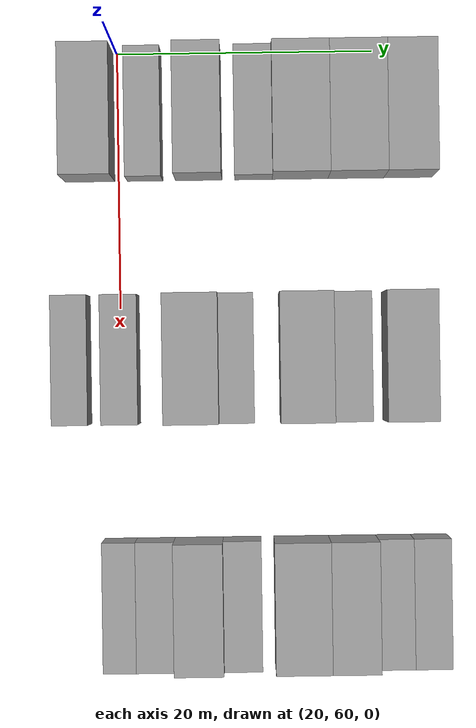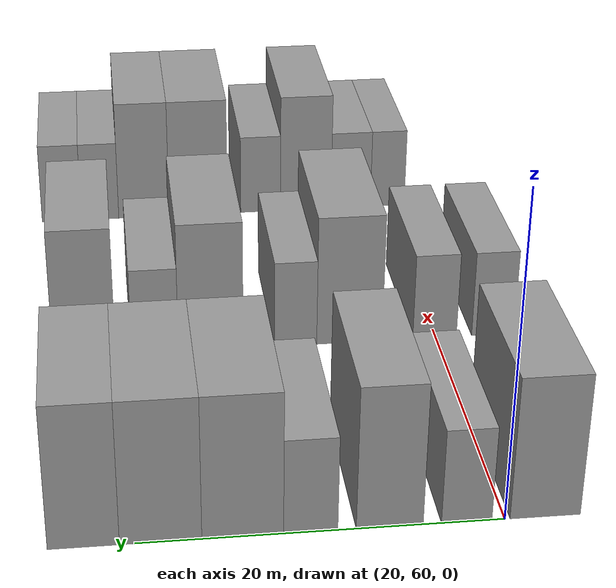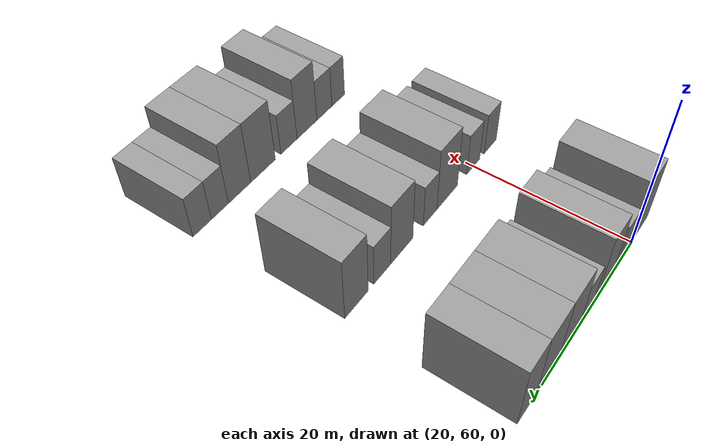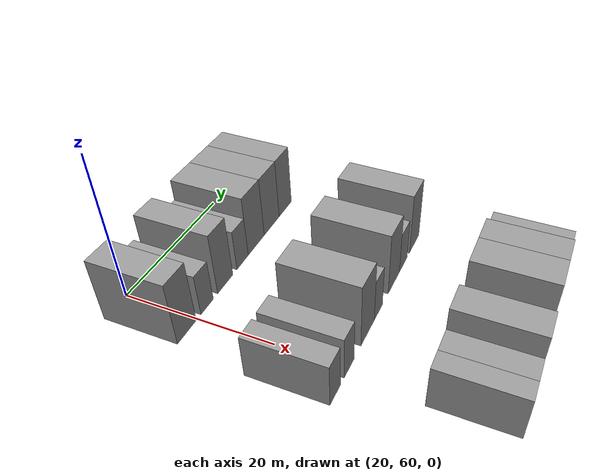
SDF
<sdf version="1.6">
 <world name="default">
  <model name="building_74">
   <static>1</static>
   <pose>25.0000 57.7731 0 0.000000 0.000000 0.000000</pose>
   <link name="link">
    <pose>0 0 4.50 0 0 0</pose>
    <collision name="collision"><geometry><box><size>10.0000 3.8920 9.0000</size></box></geometry></collision>
    <visual name="visual">
     <cast_shadows>0</cast_shadows>
     <geometry><box><size>10.0000 3.8920 9.0000</size></box></geometry>
     <material>
      <script>
       <uri>model://grey_wall/materials/scripts</uri>
       <uri>model://grey_wall/materials/textures</uri>
       <name>vrc/grey_wall</name>
      </script>
     </material>
    </visual>
   </link>
  </model>
  <model name="building_75">
   <static>1</static>
   <pose>25.0000 62.1037 0 0.000000 0.000000 0.000000</pose>
   <link name="link">
    <pose>0 0 3.00 0 0 0</pose>
    <collision name="collision"><geometry><box><size>10.0000 2.7691 6.0000</size></box></geometry></collision>
    <visual name="visual">
     <cast_shadows>0</cast_shadows>
     <geometry><box><size>10.0000 2.7691 6.0000</size></box></geometry>
     <material>
      <script>
       <uri>model://grey_wall/materials/scripts</uri>
       <uri>model://grey_wall/materials/textures</uri>
       <name>vrc/grey_wall</name>
      </script>
     </material>
    </visual>
   </link>
  </model>
  <model name="building_76">
   <static>1</static>
   <pose>25.0000 66.3098 0 0.000000 0.000000 0.000000</pose>
   <link name="link">
    <pose>0 0 4.50 0 0 0</pose>
    <collision name="collision"><geometry><box><size>10.0000 3.6431 9.0000</size></box></geometry></collision>
    <visual name="visual">
     <cast_shadows>0</cast_shadows>
     <geometry><box><size>10.0000 3.6431 9.0000</size></box></geometry>
     <material>
      <script>
       <uri>model://grey_wall/materials/scripts</uri>
       <uri>model://grey_wall/materials/textures</uri>
       <name>vrc/grey_wall</name>
      </script>
     </material>
    </visual>
   </link>
  </model>
  <model name="building_77">
   <static>1</static>
   <pose>25.0000 70.5942 0 0.000000 0.000000 0.000000</pose>
   <link name="link">
    <pose>0 0 3.00 0 0 0</pose>
    <collision name="collision"><geometry><box><size>10.0000 2.9257 6.0000</size></box></geometry></collision>
    <visual name="visual">
     <cast_shadows>0</cast_shadows>
     <geometry><box><size>10.0000 2.9257 6.0000</size></box></geometry>
     <material>
      <script>
       <uri>model://grey_wall/materials/scripts</uri>
       <uri>model://grey_wall/materials/textures</uri>
       <name>vrc/grey_wall</name>
      </script>
     </material>
    </visual>
   </link>
  </model>
  <model name="building_78">
   <static>1</static>
   <pose>25.0000 74.2457 0 0.000000 0.000000 0.000000</pose>
   <link name="link">
    <pose>0 0 4.50 0 0 0</pose>
    <collision name="collision"><geometry><box><size>10.0000 4.3774 9.0000</size></box></geometry></collision>
    <visual name="visual">
     <cast_shadows>0</cast_shadows>
     <geometry><box><size>10.0000 4.3774 9.0000</size></box></geometry>
     <material>
      <script>
       <uri>model://grey_wall/materials/scripts</uri>
       <uri>model://grey_wall/materials/textures</uri>
       <name>vrc/grey_wall</name>
      </script>
     </material>
    </visual>
   </link>
  </model>
  <model name="building_79">
   <static>1</static>
   <pose>25.0000 78.6218 0 0.000000 0.000000 0.000000</pose>
   <link name="link">
    <pose>0 0 4.50 0 0 0</pose>
    <collision name="collision"><geometry><box><size>10.0000 4.3747 9.0000</size></box></geometry></collision>
    <visual name="visual">
     <cast_shadows>0</cast_shadows>
     <geometry><box><size>10.0000 4.3747 9.0000</size></box></geometry>
     <material>
      <script>
       <uri>model://grey_wall/materials/scripts</uri>
       <uri>model://grey_wall/materials/textures</uri>
       <name>vrc/grey_wall</name>
      </script>
     </material>
    </visual>
   </link>
  </model>
  <model name="building_80">
   <static>1</static>
   <pose>25.0000 82.7082 0 0.000000 0.000000 0.000000</pose>
   <link name="link">
    <pose>0 0 4.50 0 0 0</pose>
    <collision name="collision"><geometry><box><size>10.0000 3.7982 9.0000</size></box></geometry></collision>
    <visual name="visual">
     <cast_shadows>0</cast_shadows>
     <geometry><box><size>10.0000 3.7982 9.0000</size></box></geometry>
     <material>
      <script>
       <uri>model://grey_wall/materials/scripts</uri>
       <uri>model://grey_wall/materials/textures</uri>
       <name>vrc/grey_wall</name>
      </script>
     </material>
    </visual>
   </link>
  </model>
  <model name="building_191">
   <static>1</static>
   <pose>44.0000 56.2660 0 0.000000 0.000000 0.000000</pose>
   <link name="link">
    <pose>0 0 3.00 0 0 0</pose>
    <collision name="collision"><geometry><box><size>10.0000 2.7755 6.0000</size></box></geometry></collision>
    <visual name="visual">
     <cast_shadows>0</cast_shadows>
     <geometry><box><size>10.0000 2.7755 6.0000</size></box></geometry>
     <material>
      <script>
       <uri>model://grey_wall/materials/scripts</uri>
       <uri>model://grey_wall/materials/textures</uri>
       <name>vrc/grey_wall</name>
      </script>
     </material>
    </visual>
   </link>
  </model>
  <model name="building_192">
   <static>1</static>
   <pose>44.0000 60.0739 0 0.000000 0.000000 0.000000</pose>
   <link name="link">
    <pose>0 0 3.00 0 0 0</pose>
    <collision name="collision"><geometry><box><size>10.0000 2.8402 6.0000</size></box></geometry></collision>
    <visual name="visual">
     <cast_shadows>0</cast_shadows>
     <geometry><box><size>10.0000 2.8402 6.0000</size></box></geometry>
     <material>
      <script>
       <uri>model://grey_wall/materials/scripts</uri>
       <uri>model://grey_wall/materials/textures</uri>
       <name>vrc/grey_wall</name>
      </script>
     </material>
    </visual>
   </link>
  </model>
  <model name="building_193">
   <static>1</static>
   <pose>44.0000 65.6037 0 0.000000 0.000000 0.000000</pose>
   <link name="link">
    <pose>0 0 4.50 0 0 0</pose>
    <collision name="collision"><geometry><box><size>10.0000 4.2195 9.0000</size></box></geometry></collision>
    <visual name="visual">
     <cast_shadows>0</cast_shadows>
     <geometry><box><size>10.0000 4.2195 9.0000</size></box></geometry>
     <material>
      <script>
       <uri>model://grey_wall/materials/scripts</uri>
       <uri>model://grey_wall/materials/textures</uri>
       <name>vrc/grey_wall</name>
      </script>
     </material>
    </visual>
   </link>
  </model>
  <model name="building_194">
   <static>1</static>
   <pose>44.0000 69.0674 0 0.000000 0.000000 0.000000</pose>
   <link name="link">
    <pose>0 0 3.00 0 0 0</pose>
    <collision name="collision"><geometry><box><size>10.0000 2.7080 6.0000</size></box></geometry></collision>
    <visual name="visual">
     <cast_shadows>0</cast_shadows>
     <geometry><box><size>10.0000 2.7080 6.0000</size></box></geometry>
     <material>
      <script>
       <uri>model://grey_wall/materials/scripts</uri>
       <uri>model://grey_wall/materials/textures</uri>
       <name>vrc/grey_wall</name>
      </script>
     </material>
    </visual>
   </link>
  </model>
  <model name="building_195">
   <static>1</static>
   <pose>44.0000 74.4796 0 0.000000 0.000000 0.000000</pose>
   <link name="link">
    <pose>0 0 4.50 0 0 0</pose>
    <collision name="collision"><geometry><box><size>10.0000 4.1163 9.0000</size></box></geometry></collision>
    <visual name="visual">
     <cast_shadows>0</cast_shadows>
     <geometry><box><size>10.0000 4.1163 9.0000</size></box></geometry>
     <material>
      <script>
       <uri>model://grey_wall/materials/scripts</uri>
       <uri>model://grey_wall/materials/textures</uri>
       <name>vrc/grey_wall</name>
      </script>
     </material>
    </visual>
   </link>
  </model>
  <model name="building_196">
   <static>1</static>
   <pose>44.0000 78.0209 0 0.000000 0.000000 0.000000</pose>
   <link name="link">
    <pose>0 0 3.00 0 0 0</pose>
    <collision name="collision"><geometry><box><size>10.0000 2.9663 6.0000</size></box></geometry></collision>
    <visual name="visual">
     <cast_shadows>0</cast_shadows>
     <geometry><box><size>10.0000 2.9663 6.0000</size></box></geometry>
     <material>
      <script>
       <uri>model://grey_wall/materials/scripts</uri>
       <uri>model://grey_wall/materials/textures</uri>
       <name>vrc/grey_wall</name>
      </script>
     </material>
    </visual>
   </link>
  </model>
  <model name="building_197">
   <static>1</static>
   <pose>44.0000 82.4602 0 0.000000 0.000000 0.000000</pose>
   <link name="link">
    <pose>0 0 4.50 0 0 0</pose>
    <collision name="collision"><geometry><box><size>10.0000 3.9125 9.0000</size></box></geometry></collision>
    <visual name="visual">
     <cast_shadows>0</cast_shadows>
     <geometry><box><size>10.0000 3.9125 9.0000</size></box></geometry>
     <material>
      <script>
       <uri>model://grey_wall/materials/scripts</uri>
       <uri>model://grey_wall/materials/textures</uri>
       <name>vrc/grey_wall</name>
      </script>
     </material>
    </visual>
   </link>
  </model>
  <model name="building_306">
   <static>1</static>
   <pose>63.0000 59.8619 0 0.000000 0.000000 0.000000</pose>
   <link name="link">
    <pose>0 0 3.00 0 0 0</pose>
    <collision name="collision"><geometry><box><size>10.0000 2.5462 6.0000</size></box></geometry></collision>
    <visual name="visual">
     <cast_shadows>0</cast_shadows>
     <geometry><box><size>10.0000 2.5462 6.0000</size></box></geometry>
     <material>
      <script>
       <uri>model://grey_wall/materials/scripts</uri>
       <uri>model://grey_wall/materials/textures</uri>
       <name>vrc/grey_wall</name>
      </script>
     </material>
    </visual>
   </link>
  </model>
  <model name="building_307">
   <static>1</static>
   <pose>63.0000 62.6133 0 0.000000 0.000000 0.000000</pose>
   <link name="link">
    <pose>0 0 3.00 0 0 0</pose>
    <collision name="collision"><geometry><box><size>10.0000 2.9565 6.0000</size></box></geometry></collision>
    <visual name="visual">
     <cast_shadows>0</cast_shadows>
     <geometry><box><size>10.0000 2.9565 6.0000</size></box></geometry>
     <material>
      <script>
       <uri>model://grey_wall/materials/scripts</uri>
       <uri>model://grey_wall/materials/textures</uri>
       <name>vrc/grey_wall</name>
      </script>
     </material>
    </visual>
   </link>
  </model>
  <model name="building_308">
   <static>1</static>
   <pose>63.0000 65.9754 0 0.000000 0.000000 0.000000</pose>
   <link name="link">
    <pose>0 0 4.50 0 0 0</pose>
    <collision name="collision"><geometry><box><size>10.0000 3.7678 9.0000</size></box></geometry></collision>
    <visual name="visual">
     <cast_shadows>0</cast_shadows>
     <geometry><box><size>10.0000 3.7678 9.0000</size></box></geometry>
     <material>
      <script>
       <uri>model://grey_wall/materials/scripts</uri>
       <uri>model://grey_wall/materials/textures</uri>
       <name>vrc/grey_wall</name>
      </script>
     </material>
    </visual>
   </link>
  </model>
  <model name="building_309">
   <static>1</static>
   <pose>63.0000 69.3278 0 0.000000 0.000000 0.000000</pose>
   <link name="link">
    <pose>0 0 3.00 0 0 0</pose>
    <collision name="collision"><geometry><box><size>10.0000 2.9370 6.0000</size></box></geometry></collision>
    <visual name="visual">
     <cast_shadows>0</cast_shadows>
     <geometry><box><size>10.0000 2.9370 6.0000</size></box></geometry>
     <material>
      <script>
       <uri>model://grey_wall/materials/scripts</uri>
       <uri>model://grey_wall/materials/textures</uri>
       <name>vrc/grey_wall</name>
      </script>
     </material>
    </visual>
   </link>
  </model>
  <model name="building_310">
   <static>1</static>
   <pose>63.0000 73.9349 0 0.000000 0.000000 0.000000</pose>
   <link name="link">
    <pose>0 0 4.50 0 0 0</pose>
    <collision name="collision"><geometry><box><size>10.0000 4.2772 9.0000</size></box></geometry></collision>
    <visual name="visual">
     <cast_shadows>0</cast_shadows>
     <geometry><box><size>10.0000 4.2772 9.0000</size></box></geometry>
     <material>
      <script>
       <uri>model://grey_wall/materials/scripts</uri>
       <uri>model://grey_wall/materials/textures</uri>
       <name>vrc/grey_wall</name>
      </script>
     </material>
    </visual>
   </link>
  </model>
  <model name="building_311">
   <static>1</static>
   <pose>63.0000 77.9193 0 0.000000 0.000000 0.000000</pose>
   <link name="link">
    <pose>0 0 4.50 0 0 0</pose>
    <collision name="collision"><geometry><box><size>10.0000 3.6914 9.0000</size></box></geometry></collision>
    <visual name="visual">
     <cast_shadows>0</cast_shadows>
     <geometry><box><size>10.0000 3.6914 9.0000</size></box></geometry>
     <material>
      <script>
       <uri>model://grey_wall/materials/scripts</uri>
       <uri>model://grey_wall/materials/textures</uri>
       <name>vrc/grey_wall</name>
      </script>
     </material>
    </visual>
   </link>
  </model>
  <model name="building_312">
   <static>1</static>
   <pose>63.0000 81.1245 0 0.000000 0.000000 0.000000</pose>
   <link name="link">
    <pose>0 0 3.00 0 0 0</pose>
    <collision name="collision"><geometry><box><size>10.0000 2.7190 6.0000</size></box></geometry></collision>
    <visual name="visual">
     <cast_shadows>0</cast_shadows>
     <geometry><box><size>10.0000 2.7190 6.0000</size></box></geometry>
     <material>
      <script>
       <uri>model://grey_wall/materials/scripts</uri>
       <uri>model://grey_wall/materials/textures</uri>
       <name>vrc/grey_wall</name>
      </script>
     </material>
    </visual>
   </link>
  </model>
  <model name="building_313">
   <static>1</static>
   <pose>63.0000 83.9060 0 0.000000 0.000000 0.000000</pose>
   <link name="link">
    <pose>0 0 3.00 0 0 0</pose>
    <collision name="collision"><geometry><box><size>10.0000 2.8441 6.0000</size></box></geometry></collision>
    <visual name="visual">
     <cast_shadows>0</cast_shadows>
     <geometry><box><size>10.0000 2.8441 6.0000</size></box></geometry>
     <material>
      <script>
       <uri>model://grey_wall/materials/scripts</uri>
       <uri>model://grey_wall/materials/textures</uri>
       <name>vrc/grey_wall</name>
      </script>
     </material>
    </visual>
   </link>
  </model>
 </world>
</sdf>
